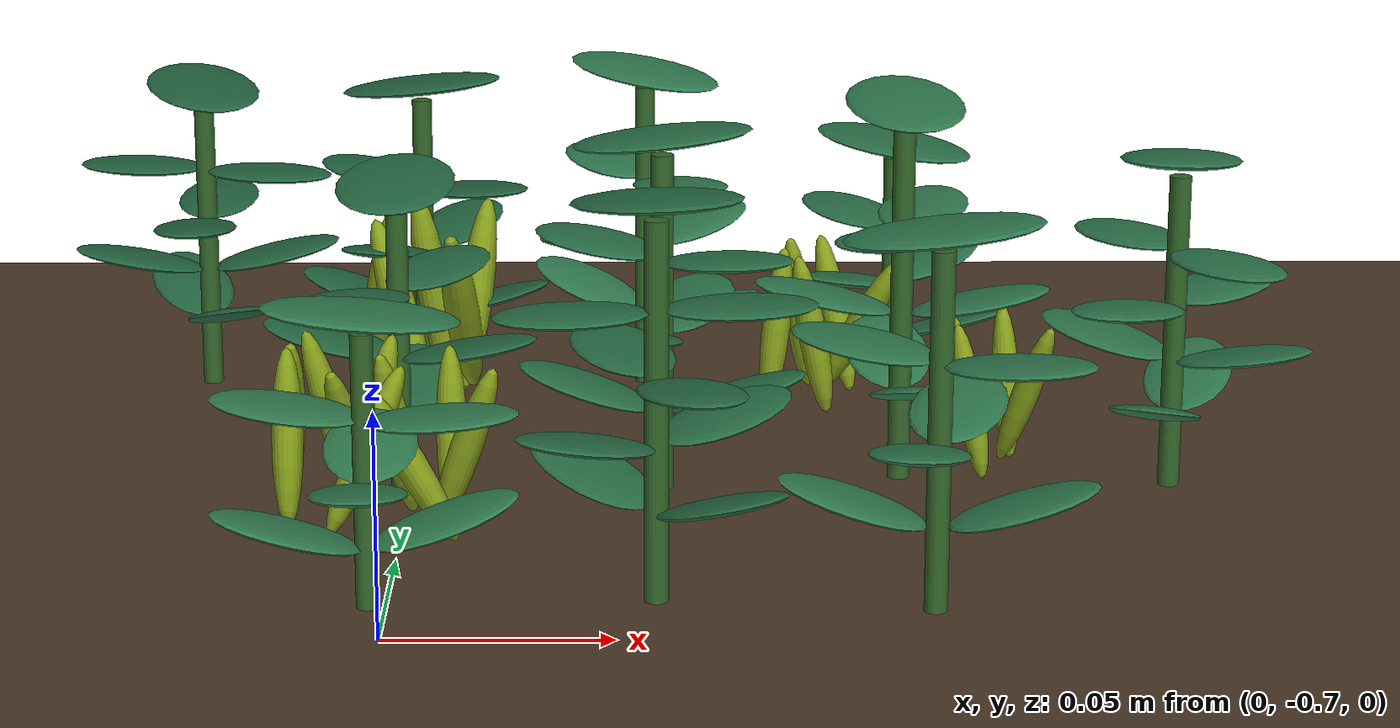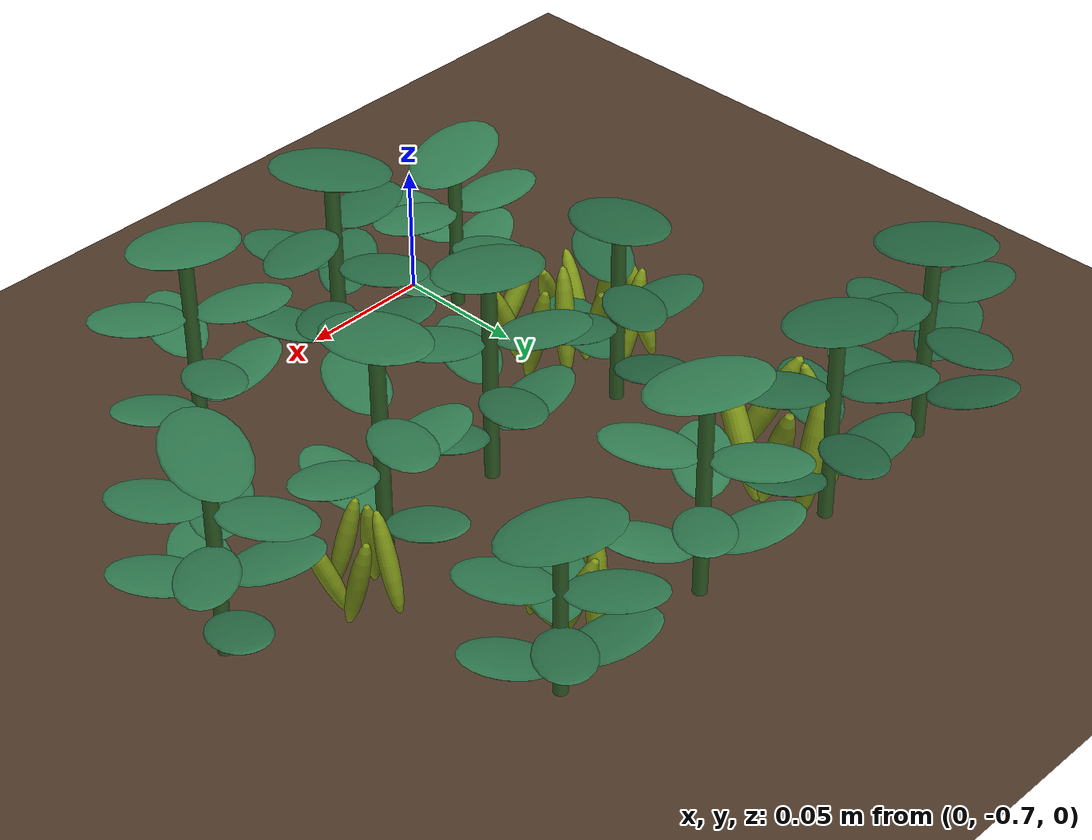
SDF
<sdf version="1.9">
 <world name="jim_field">
  <model name="ground_plane">
   <static>true</static>
   <link name="link">
    <collision name="collision">
     <geometry><plane><normal>0 0 1</normal><size>40 40</size></plane></geometry>
    </collision>
    <visual name="visual">
     <geometry><plane><normal>0 0 1</normal><size>40 40</size></plane></geometry>
     <material>
      <ambient>0.20 0.15 0.11 1</ambient>
      <diffuse>0.30 0.22 0.16 1</diffuse>
      <specular>0.01 0.01 0.01 1</specular>
     </material>
    </visual>
   </link>
  </model>
  <model name="field">
   <static>true</static>
   <pose>0.1837 -0.2516 0 0 0 0</pose>
   <model name="crop_5">
    <static>true</static>
    <pose>-0.1876 -0.4283 0 0 0 0</pose>
    <link name="link">
     <visual name="stem">
      <pose>0 0 0.0307 0 0 0</pose>
      <geometry><cylinder><radius>0.0025</radius><length>0.0613</length></cylinder></geometry>
      <material>
       <ambient>0.10 0.22 0.09 1</ambient>
       <diffuse>0.20 0.40 0.16 1</diffuse>
       <specular>0.05 0.06 0.05 1</specular>
      </material>
     </visual>
     <visual name="leaflet_0_0">
      <pose>-0.0168 -0.0039 0.0184 0 -0.300 3.3675</pose>
      <geometry><ellipsoid><radii>0.0170 0.0105 0.0016</radii></ellipsoid></geometry>
      <material>
       <ambient>0.099 0.249 0.149 1</ambient>
       <diffuse>0.188 0.477 0.308 1</diffuse>
       <specular>0.05 0.06 0.05 1</specular>
      </material>
     </visual>
     <visual name="leaflet_0_1">
      <pose>0.0168 0.0039 0.0184 0 -0.300 6.5091</pose>
      <geometry><ellipsoid><radii>0.0170 0.0105 0.0016</radii></ellipsoid></geometry>
      <material>
       <ambient>0.099 0.249 0.149 1</ambient>
       <diffuse>0.188 0.477 0.308 1</diffuse>
       <specular>0.05 0.06 0.05 1</specular>
      </material>
     </visual>
     <visual name="leaflet_1_0">
      <pose>0.0001 -0.0173 0.0311 0 -0.200 4.7175</pose>
      <geometry><ellipsoid><radii>0.0170 0.0105 0.0016</radii></ellipsoid></geometry>
      <material>
       <ambient>0.099 0.249 0.149 1</ambient>
       <diffuse>0.188 0.477 0.308 1</diffuse>
       <specular>0.05 0.06 0.05 1</specular>
      </material>
     </visual>
     <visual name="leaflet_1_1">
      <pose>-0.0001 0.0173 0.0311 0 -0.200 7.8591</pose>
      <geometry><ellipsoid><radii>0.0170 0.0105 0.0016</radii></ellipsoid></geometry>
      <material>
       <ambient>0.099 0.249 0.149 1</ambient>
       <diffuse>0.188 0.477 0.308 1</diffuse>
       <specular>0.05 0.06 0.05 1</specular>
      </material>
     </visual>
     <visual name="leaflet_2_0">
      <pose>0.0169 -0.0037 0.0437 0 -0.100 6.0675</pose>
      <geometry><ellipsoid><radii>0.0170 0.0105 0.0016</radii></ellipsoid></geometry>
      <material>
       <ambient>0.099 0.249 0.149 1</ambient>
       <diffuse>0.188 0.477 0.308 1</diffuse>
       <specular>0.05 0.06 0.05 1</specular>
      </material>
     </visual>
     <visual name="leaflet_2_1">
      <pose>-0.0169 0.0037 0.0437 0 -0.100 9.2091</pose>
      <geometry><ellipsoid><radii>0.0170 0.0105 0.0016</radii></ellipsoid></geometry>
      <material>
       <ambient>0.099 0.249 0.149 1</ambient>
       <diffuse>0.188 0.477 0.308 1</diffuse>
       <specular>0.05 0.06 0.05 1</specular>
      </material>
     </visual>
     <visual name="leaflet_terminal">
      <pose>0 0 0.0653 0 -0.12 3.3675</pose>
      <geometry><ellipsoid><radii>0.0215 0.0140 0.0018</radii></ellipsoid></geometry>
      <material>
       <ambient>0.099 0.249 0.149 1</ambient>
       <diffuse>0.188 0.477 0.308 1</diffuse>
       <specular>0.05 0.06 0.05 1</specular>
      </material>
     </visual>
    </link>
   </model>
   <model name="crop_6">
    <static>true</static>
    <pose>-0.1252 -0.4243 0 0 0 0</pose>
    <link name="link">
     <visual name="stem">
      <pose>0 0 0.0424 0 0 0</pose>
      <geometry><cylinder><radius>0.0027</radius><length>0.0849</length></cylinder></geometry>
      <material>
       <ambient>0.10 0.22 0.09 1</ambient>
       <diffuse>0.20 0.40 0.16 1</diffuse>
       <specular>0.05 0.06 0.05 1</specular>
      </material>
     </visual>
     <visual name="leaflet_0_0">
      <pose>0.0139 -0.0123 0.0255 0 -0.300 5.5606</pose>
      <geometry><ellipsoid><radii>0.0170 0.0105 0.0016</radii></ellipsoid></geometry>
      <material>
       <ambient>0.081 0.218 0.124 1</ambient>
       <diffuse>0.152 0.416 0.265 1</diffuse>
       <specular>0.05 0.06 0.05 1</specular>
      </material>
     </visual>
     <visual name="leaflet_0_1">
      <pose>-0.0139 0.0123 0.0255 0 -0.300 8.7022</pose>
      <geometry><ellipsoid><radii>0.0170 0.0105 0.0016</radii></ellipsoid></geometry>
      <material>
       <ambient>0.081 0.218 0.124 1</ambient>
       <diffuse>0.152 0.416 0.265 1</diffuse>
       <specular>0.05 0.06 0.05 1</specular>
      </material>
     </visual>
     <visual name="leaflet_1_0">
      <pose>0.0150 0.0109 0.0386 0 -0.200 6.9106</pose>
      <geometry><ellipsoid><radii>0.0170 0.0105 0.0016</radii></ellipsoid></geometry>
      <material>
       <ambient>0.081 0.218 0.124 1</ambient>
       <diffuse>0.152 0.416 0.265 1</diffuse>
       <specular>0.05 0.06 0.05 1</specular>
      </material>
     </visual>
     <visual name="leaflet_1_1">
      <pose>-0.0150 -0.0109 0.0386 0 -0.200 10.0522</pose>
      <geometry><ellipsoid><radii>0.0170 0.0105 0.0016</radii></ellipsoid></geometry>
      <material>
       <ambient>0.081 0.218 0.124 1</ambient>
       <diffuse>0.152 0.416 0.265 1</diffuse>
       <specular>0.05 0.06 0.05 1</specular>
      </material>
     </visual>
     <visual name="leaflet_2_0">
      <pose>-0.0073 0.0170 0.0518 0 -0.100 8.2606</pose>
      <geometry><ellipsoid><radii>0.0170 0.0105 0.0016</radii></ellipsoid></geometry>
      <material>
       <ambient>0.081 0.218 0.124 1</ambient>
       <diffuse>0.152 0.416 0.265 1</diffuse>
       <specular>0.05 0.06 0.05 1</specular>
      </material>
     </visual>
     <visual name="leaflet_2_1">
      <pose>0.0073 -0.0170 0.0518 0 -0.100 11.4022</pose>
      <geometry><ellipsoid><radii>0.0170 0.0105 0.0016</radii></ellipsoid></geometry>
      <material>
       <ambient>0.081 0.218 0.124 1</ambient>
       <diffuse>0.152 0.416 0.265 1</diffuse>
       <specular>0.05 0.06 0.05 1</specular>
      </material>
     </visual>
     <visual name="leaflet_3_0">
      <pose>-0.0182 -0.0034 0.0649 0 0.000 9.6106</pose>
      <geometry><ellipsoid><radii>0.0170 0.0105 0.0016</radii></ellipsoid></geometry>
      <material>
       <ambient>0.081 0.218 0.124 1</ambient>
       <diffuse>0.152 0.416 0.265 1</diffuse>
       <specular>0.05 0.06 0.05 1</specular>
      </material>
     </visual>
     <visual name="leaflet_3_1">
      <pose>0.0182 0.0034 0.0649 0 0.000 12.7522</pose>
      <geometry><ellipsoid><radii>0.0170 0.0105 0.0016</radii></ellipsoid></geometry>
      <material>
       <ambient>0.081 0.218 0.124 1</ambient>
       <diffuse>0.152 0.416 0.265 1</diffuse>
       <specular>0.05 0.06 0.05 1</specular>
      </material>
     </visual>
     <visual name="leaflet_terminal">
      <pose>0 0 0.0889 0 -0.12 5.5606</pose>
      <geometry><ellipsoid><radii>0.0215 0.0140 0.0018</radii></ellipsoid></geometry>
      <material>
       <ambient>0.081 0.218 0.124 1</ambient>
       <diffuse>0.152 0.416 0.265 1</diffuse>
       <specular>0.05 0.06 0.05 1</specular>
      </material>
     </visual>
    </link>
   </model>
   <model name="crop_7">
    <static>true</static>
    <pose>-0.0651 -0.4310 0 0 0 0</pose>
    <link name="link">
     <visual name="stem">
      <pose>0 0 0.0399 0 0 0</pose>
      <geometry><cylinder><radius>0.0026</radius><length>0.0798</length></cylinder></geometry>
      <material>
       <ambient>0.10 0.22 0.09 1</ambient>
       <diffuse>0.20 0.40 0.16 1</diffuse>
       <specular>0.05 0.06 0.05 1</specular>
      </material>
     </visual>
     <visual name="leaflet_0_0">
      <pose>0.0182 -0.0017 0.0240 0 -0.300 6.1872</pose>
      <geometry><ellipsoid><radii>0.0170 0.0105 0.0016</radii></ellipsoid></geometry>
      <material>
       <ambient>0.096 0.243 0.144 1</ambient>
       <diffuse>0.181 0.466 0.300 1</diffuse>
       <specular>0.05 0.06 0.05 1</specular>
      </material>
     </visual>
     <visual name="leaflet_0_1">
      <pose>-0.0182 0.0017 0.0240 0 -0.300 9.3288</pose>
      <geometry><ellipsoid><radii>0.0170 0.0105 0.0016</radii></ellipsoid></geometry>
      <material>
       <ambient>0.096 0.243 0.144 1</ambient>
       <diffuse>0.181 0.466 0.300 1</diffuse>
       <specular>0.05 0.06 0.05 1</specular>
      </material>
     </visual>
     <visual name="leaflet_1_0">
      <pose>0.0057 0.0173 0.0405 0 -0.200 7.5372</pose>
      <geometry><ellipsoid><radii>0.0170 0.0105 0.0016</radii></ellipsoid></geometry>
      <material>
       <ambient>0.096 0.243 0.144 1</ambient>
       <diffuse>0.181 0.466 0.300 1</diffuse>
       <specular>0.05 0.06 0.05 1</specular>
      </material>
     </visual>
     <visual name="leaflet_1_1">
      <pose>-0.0057 -0.0173 0.0405 0 -0.200 10.6788</pose>
      <geometry><ellipsoid><radii>0.0170 0.0105 0.0016</radii></ellipsoid></geometry>
      <material>
       <ambient>0.096 0.243 0.144 1</ambient>
       <diffuse>0.181 0.466 0.300 1</diffuse>
       <specular>0.05 0.06 0.05 1</specular>
      </material>
     </visual>
     <visual name="leaflet_2_0">
      <pose>-0.0157 0.0093 0.0570 0 -0.100 8.8872</pose>
      <geometry><ellipsoid><radii>0.0170 0.0105 0.0016</radii></ellipsoid></geometry>
      <material>
       <ambient>0.096 0.243 0.144 1</ambient>
       <diffuse>0.181 0.466 0.300 1</diffuse>
       <specular>0.05 0.06 0.05 1</specular>
      </material>
     </visual>
     <visual name="leaflet_2_1">
      <pose>0.0157 -0.0093 0.0570 0 -0.100 12.0288</pose>
      <geometry><ellipsoid><radii>0.0170 0.0105 0.0016</radii></ellipsoid></geometry>
      <material>
       <ambient>0.096 0.243 0.144 1</ambient>
       <diffuse>0.181 0.466 0.300 1</diffuse>
       <specular>0.05 0.06 0.05 1</specular>
      </material>
     </visual>
     <visual name="leaflet_terminal">
      <pose>0 0 0.0838 0 -0.12 6.1872</pose>
      <geometry><ellipsoid><radii>0.0215 0.0140 0.0018</radii></ellipsoid></geometry>
      <material>
       <ambient>0.096 0.243 0.144 1</ambient>
       <diffuse>0.181 0.466 0.300 1</diffuse>
       <specular>0.05 0.06 0.05 1</specular>
      </material>
     </visual>
    </link>
   </model>
   <model name="crop_22">
    <static>true</static>
    <pose>-0.1861 -0.3454 0 0 0 0</pose>
    <link name="link">
     <visual name="stem">
      <pose>0 0 0.0354 0 0 0</pose>
      <geometry><cylinder><radius>0.0026</radius><length>0.0709</length></cylinder></geometry>
      <material>
       <ambient>0.10 0.22 0.09 1</ambient>
       <diffuse>0.20 0.40 0.16 1</diffuse>
       <specular>0.05 0.06 0.05 1</specular>
      </material>
     </visual>
     <visual name="leaflet_0_0">
      <pose>0.0012 0.0177 0.0213 0 -0.300 1.5038</pose>
      <geometry><ellipsoid><radii>0.0170 0.0105 0.0016</radii></ellipsoid></geometry>
      <material>
       <ambient>0.077 0.212 0.120 1</ambient>
       <diffuse>0.144 0.404 0.257 1</diffuse>
       <specular>0.05 0.06 0.05 1</specular>
      </material>
     </visual>
     <visual name="leaflet_0_1">
      <pose>-0.0012 -0.0177 0.0213 0 -0.300 4.6454</pose>
      <geometry><ellipsoid><radii>0.0170 0.0105 0.0016</radii></ellipsoid></geometry>
      <material>
       <ambient>0.077 0.212 0.120 1</ambient>
       <diffuse>0.144 0.404 0.257 1</diffuse>
       <specular>0.05 0.06 0.05 1</specular>
      </material>
     </visual>
     <visual name="leaflet_1_0">
      <pose>-0.0170 0.0050 0.0359 0 -0.200 2.8538</pose>
      <geometry><ellipsoid><radii>0.0170 0.0105 0.0016</radii></ellipsoid></geometry>
      <material>
       <ambient>0.077 0.212 0.120 1</ambient>
       <diffuse>0.144 0.404 0.257 1</diffuse>
       <specular>0.05 0.06 0.05 1</specular>
      </material>
     </visual>
     <visual name="leaflet_1_1">
      <pose>0.0170 -0.0050 0.0359 0 -0.200 5.9954</pose>
      <geometry><ellipsoid><radii>0.0170 0.0105 0.0016</radii></ellipsoid></geometry>
      <material>
       <ambient>0.077 0.212 0.120 1</ambient>
       <diffuse>0.144 0.404 0.257 1</diffuse>
       <specular>0.05 0.06 0.05 1</specular>
      </material>
     </visual>
     <visual name="leaflet_2_0">
      <pose>-0.0087 -0.0155 0.0506 0 -0.100 4.2038</pose>
      <geometry><ellipsoid><radii>0.0170 0.0105 0.0016</radii></ellipsoid></geometry>
      <material>
       <ambient>0.077 0.212 0.120 1</ambient>
       <diffuse>0.144 0.404 0.257 1</diffuse>
       <specular>0.05 0.06 0.05 1</specular>
      </material>
     </visual>
     <visual name="leaflet_2_1">
      <pose>0.0087 0.0155 0.0506 0 -0.100 7.3454</pose>
      <geometry><ellipsoid><radii>0.0170 0.0105 0.0016</radii></ellipsoid></geometry>
      <material>
       <ambient>0.077 0.212 0.120 1</ambient>
       <diffuse>0.144 0.404 0.257 1</diffuse>
       <specular>0.05 0.06 0.05 1</specular>
      </material>
     </visual>
     <visual name="leaflet_terminal">
      <pose>0 0 0.0749 0 -0.12 1.5038</pose>
      <geometry><ellipsoid><radii>0.0215 0.0140 0.0018</radii></ellipsoid></geometry>
      <material>
       <ambient>0.077 0.212 0.120 1</ambient>
       <diffuse>0.144 0.404 0.257 1</diffuse>
       <specular>0.05 0.06 0.05 1</specular>
      </material>
     </visual>
    </link>
   </model>
   <model name="crop_23">
    <static>true</static>
    <pose>-0.1233 -0.3459 0 0 0 0</pose>
    <link name="link">
     <visual name="stem">
      <pose>0 0 0.0410 0 0 0</pose>
      <geometry><cylinder><radius>0.0027</radius><length>0.0820</length></cylinder></geometry>
      <material>
       <ambient>0.10 0.22 0.09 1</ambient>
       <diffuse>0.20 0.40 0.16 1</diffuse>
       <specular>0.05 0.06 0.05 1</specular>
      </material>
     </visual>
     <visual name="leaflet_0_0">
      <pose>0.0182 -0.0026 0.0246 0 -0.300 6.1417</pose>
      <geometry><ellipsoid><radii>0.0170 0.0105 0.0016</radii></ellipsoid></geometry>
      <material>
       <ambient>0.086 0.227 0.131 1</ambient>
       <diffuse>0.162 0.433 0.277 1</diffuse>
       <specular>0.05 0.06 0.05 1</specular>
      </material>
     </visual>
     <visual name="leaflet_0_1">
      <pose>-0.0182 0.0026 0.0246 0 -0.300 9.2833</pose>
      <geometry><ellipsoid><radii>0.0170 0.0105 0.0016</radii></ellipsoid></geometry>
      <material>
       <ambient>0.086 0.227 0.131 1</ambient>
       <diffuse>0.162 0.433 0.277 1</diffuse>
       <specular>0.05 0.06 0.05 1</specular>
      </material>
     </visual>
     <visual name="leaflet_1_0">
      <pose>0.0065 0.0172 0.0415 0 -0.200 7.4917</pose>
      <geometry><ellipsoid><radii>0.0170 0.0105 0.0016</radii></ellipsoid></geometry>
      <material>
       <ambient>0.086 0.227 0.131 1</ambient>
       <diffuse>0.162 0.433 0.277 1</diffuse>
       <specular>0.05 0.06 0.05 1</specular>
      </material>
     </visual>
     <visual name="leaflet_1_1">
      <pose>-0.0065 -0.0172 0.0415 0 -0.200 10.6333</pose>
      <geometry><ellipsoid><radii>0.0170 0.0105 0.0016</radii></ellipsoid></geometry>
      <material>
       <ambient>0.086 0.227 0.131 1</ambient>
       <diffuse>0.162 0.433 0.277 1</diffuse>
       <specular>0.05 0.06 0.05 1</specular>
      </material>
     </visual>
     <visual name="leaflet_2_0">
      <pose>-0.0153 0.0101 0.0585 0 -0.100 8.8417</pose>
      <geometry><ellipsoid><radii>0.0170 0.0105 0.0016</radii></ellipsoid></geometry>
      <material>
       <ambient>0.086 0.227 0.131 1</ambient>
       <diffuse>0.162 0.433 0.277 1</diffuse>
       <specular>0.05 0.06 0.05 1</specular>
      </material>
     </visual>
     <visual name="leaflet_2_1">
      <pose>0.0153 -0.0101 0.0585 0 -0.100 11.9833</pose>
      <geometry><ellipsoid><radii>0.0170 0.0105 0.0016</radii></ellipsoid></geometry>
      <material>
       <ambient>0.086 0.227 0.131 1</ambient>
       <diffuse>0.162 0.433 0.277 1</diffuse>
       <specular>0.05 0.06 0.05 1</specular>
      </material>
     </visual>
     <visual name="leaflet_terminal">
      <pose>0 0 0.0860 0 -0.12 6.1417</pose>
      <geometry><ellipsoid><radii>0.0215 0.0140 0.0018</radii></ellipsoid></geometry>
      <material>
       <ambient>0.086 0.227 0.131 1</ambient>
       <diffuse>0.162 0.433 0.277 1</diffuse>
       <specular>0.05 0.06 0.05 1</specular>
      </material>
     </visual>
    </link>
   </model>
   <model name="crop_24">
    <static>true</static>
    <pose>-0.0657 -0.3378 0 0 0 0</pose>
    <link name="link">
     <visual name="stem">
      <pose>0 0 0.0442 0 0 0</pose>
      <geometry><cylinder><radius>0.0027</radius><length>0.0884</length></cylinder></geometry>
      <material>
       <ambient>0.10 0.22 0.09 1</ambient>
       <diffuse>0.20 0.40 0.16 1</diffuse>
       <specular>0.05 0.06 0.05 1</specular>
      </material>
     </visual>
     <visual name="leaflet_0_0">
      <pose>-0.0018 0.0186 0.0265 0 -0.300 1.6646</pose>
      <geometry><ellipsoid><radii>0.0170 0.0105 0.0016</radii></ellipsoid></geometry>
      <material>
       <ambient>0.096 0.244 0.145 1</ambient>
       <diffuse>0.182 0.467 0.301 1</diffuse>
       <specular>0.05 0.06 0.05 1</specular>
      </material>
     </visual>
     <visual name="leaflet_0_1">
      <pose>0.0018 -0.0186 0.0265 0 -0.300 4.8061</pose>
      <geometry><ellipsoid><radii>0.0170 0.0105 0.0016</radii></ellipsoid></geometry>
      <material>
       <ambient>0.096 0.244 0.145 1</ambient>
       <diffuse>0.182 0.467 0.301 1</diffuse>
       <specular>0.05 0.06 0.05 1</specular>
      </material>
     </visual>
     <visual name="leaflet_1_0">
      <pose>-0.0186 0.0024 0.0448 0 -0.200 3.0146</pose>
      <geometry><ellipsoid><radii>0.0170 0.0105 0.0016</radii></ellipsoid></geometry>
      <material>
       <ambient>0.096 0.244 0.145 1</ambient>
       <diffuse>0.182 0.467 0.301 1</diffuse>
       <specular>0.05 0.06 0.05 1</specular>
      </material>
     </visual>
     <visual name="leaflet_1_1">
      <pose>0.0186 -0.0024 0.0448 0 -0.200 6.1561</pose>
      <geometry><ellipsoid><radii>0.0170 0.0105 0.0016</radii></ellipsoid></geometry>
      <material>
       <ambient>0.096 0.244 0.145 1</ambient>
       <diffuse>0.182 0.467 0.301 1</diffuse>
       <specular>0.05 0.06 0.05 1</specular>
      </material>
     </visual>
     <visual name="leaflet_2_0">
      <pose>-0.0064 -0.0176 0.0631 0 -0.100 4.3646</pose>
      <geometry><ellipsoid><radii>0.0170 0.0105 0.0016</radii></ellipsoid></geometry>
      <material>
       <ambient>0.096 0.244 0.145 1</ambient>
       <diffuse>0.182 0.467 0.301 1</diffuse>
       <specular>0.05 0.06 0.05 1</specular>
      </material>
     </visual>
     <visual name="leaflet_2_1">
      <pose>0.0064 0.0176 0.0631 0 -0.100 7.5061</pose>
      <geometry><ellipsoid><radii>0.0170 0.0105 0.0016</radii></ellipsoid></geometry>
      <material>
       <ambient>0.096 0.244 0.145 1</ambient>
       <diffuse>0.182 0.467 0.301 1</diffuse>
       <specular>0.05 0.06 0.05 1</specular>
      </material>
     </visual>
     <visual name="leaflet_terminal">
      <pose>0 0 0.0924 0 -0.12 1.6646</pose>
      <geometry><ellipsoid><radii>0.0215 0.0140 0.0018</radii></ellipsoid></geometry>
      <material>
       <ambient>0.096 0.244 0.145 1</ambient>
       <diffuse>0.182 0.467 0.301 1</diffuse>
       <specular>0.05 0.06 0.05 1</specular>
      </material>
     </visual>
    </link>
   </model>
   <model name="crop_25">
    <static>true</static>
    <pose>-0.0008 -0.3440 0 0 0 0</pose>
    <link name="link">
     <visual name="stem">
      <pose>0 0 0.0381 0 0 0</pose>
      <geometry><cylinder><radius>0.0026</radius><length>0.0762</length></cylinder></geometry>
      <material>
       <ambient>0.10 0.22 0.09 1</ambient>
       <diffuse>0.20 0.40 0.16 1</diffuse>
       <specular>0.05 0.06 0.05 1</specular>
      </material>
     </visual>
     <visual name="leaflet_0_0">
      <pose>-0.0067 -0.0168 0.0229 0 -0.300 4.3324</pose>
      <geometry><ellipsoid><radii>0.0170 0.0105 0.0016</radii></ellipsoid></geometry>
      <material>
       <ambient>0.091 0.236 0.139 1</ambient>
       <diffuse>0.173 0.451 0.290 1</diffuse>
       <specular>0.05 0.06 0.05 1</specular>
      </material>
     </visual>
     <visual name="leaflet_0_1">
      <pose>0.0067 0.0168 0.0229 0 -0.300 7.4740</pose>
      <geometry><ellipsoid><radii>0.0170 0.0105 0.0016</radii></ellipsoid></geometry>
      <material>
       <ambient>0.091 0.236 0.139 1</ambient>
       <diffuse>0.173 0.451 0.290 1</diffuse>
       <specular>0.05 0.06 0.05 1</specular>
      </material>
     </visual>
     <visual name="leaflet_1_0">
      <pose>0.0149 -0.0102 0.0347 0 -0.200 5.6824</pose>
      <geometry><ellipsoid><radii>0.0170 0.0105 0.0016</radii></ellipsoid></geometry>
      <material>
       <ambient>0.091 0.236 0.139 1</ambient>
       <diffuse>0.173 0.451 0.290 1</diffuse>
       <specular>0.05 0.06 0.05 1</specular>
      </material>
     </visual>
     <visual name="leaflet_1_1">
      <pose>-0.0149 0.0102 0.0347 0 -0.200 8.8240</pose>
      <geometry><ellipsoid><radii>0.0170 0.0105 0.0016</radii></ellipsoid></geometry>
      <material>
       <ambient>0.091 0.236 0.139 1</ambient>
       <diffuse>0.173 0.451 0.290 1</diffuse>
       <specular>0.05 0.06 0.05 1</specular>
      </material>
     </visual>
     <visual name="leaflet_2_0">
      <pose>0.0132 0.0123 0.0465 0 -0.100 7.0324</pose>
      <geometry><ellipsoid><radii>0.0170 0.0105 0.0016</radii></ellipsoid></geometry>
      <material>
       <ambient>0.091 0.236 0.139 1</ambient>
       <diffuse>0.173 0.451 0.290 1</diffuse>
       <specular>0.05 0.06 0.05 1</specular>
      </material>
     </visual>
     <visual name="leaflet_2_1">
      <pose>-0.0132 -0.0123 0.0465 0 -0.100 10.1740</pose>
      <geometry><ellipsoid><radii>0.0170 0.0105 0.0016</radii></ellipsoid></geometry>
      <material>
       <ambient>0.091 0.236 0.139 1</ambient>
       <diffuse>0.173 0.451 0.290 1</diffuse>
       <specular>0.05 0.06 0.05 1</specular>
      </material>
     </visual>
     <visual name="leaflet_3_0">
      <pose>-0.0091 0.0156 0.0583 0 0.000 8.3824</pose>
      <geometry><ellipsoid><radii>0.0170 0.0105 0.0016</radii></ellipsoid></geometry>
      <material>
       <ambient>0.091 0.236 0.139 1</ambient>
       <diffuse>0.173 0.451 0.290 1</diffuse>
       <specular>0.05 0.06 0.05 1</specular>
      </material>
     </visual>
     <visual name="leaflet_3_1">
      <pose>0.0091 -0.0156 0.0583 0 0.000 11.5240</pose>
      <geometry><ellipsoid><radii>0.0170 0.0105 0.0016</radii></ellipsoid></geometry>
      <material>
       <ambient>0.091 0.236 0.139 1</ambient>
       <diffuse>0.173 0.451 0.290 1</diffuse>
       <specular>0.05 0.06 0.05 1</specular>
      </material>
     </visual>
     <visual name="leaflet_terminal">
      <pose>0 0 0.0802 0 -0.12 4.3324</pose>
      <geometry><ellipsoid><radii>0.0215 0.0140 0.0018</radii></ellipsoid></geometry>
      <material>
       <ambient>0.091 0.236 0.139 1</ambient>
       <diffuse>0.173 0.451 0.290 1</diffuse>
       <specular>0.05 0.06 0.05 1</specular>
      </material>
     </visual>
    </link>
   </model>
   <model name="crop_38">
    <static>true</static>
    <pose>-0.2433 -0.2539 0 0 0 0</pose>
    <link name="link">
     <visual name="stem">
      <pose>0 0 0.0381 0 0 0</pose>
      <geometry><cylinder><radius>0.0026</radius><length>0.0763</length></cylinder></geometry>
      <material>
       <ambient>0.10 0.22 0.09 1</ambient>
       <diffuse>0.20 0.40 0.16 1</diffuse>
       <specular>0.05 0.06 0.05 1</specular>
      </material>
     </visual>
     <visual name="leaflet_0_0">
      <pose>-0.0070 0.0167 0.0229 0 -0.300 1.9694</pose>
      <geometry><ellipsoid><radii>0.0170 0.0105 0.0016</radii></ellipsoid></geometry>
      <material>
       <ambient>0.072 0.203 0.112 1</ambient>
       <diffuse>0.133 0.385 0.244 1</diffuse>
       <specular>0.05 0.06 0.05 1</specular>
      </material>
     </visual>
     <visual name="leaflet_0_1">
      <pose>0.0070 -0.0167 0.0229 0 -0.300 5.1110</pose>
      <geometry><ellipsoid><radii>0.0170 0.0105 0.0016</radii></ellipsoid></geometry>
      <material>
       <ambient>0.072 0.203 0.112 1</ambient>
       <diffuse>0.133 0.385 0.244 1</diffuse>
       <specular>0.05 0.06 0.05 1</specular>
      </material>
     </visual>
     <visual name="leaflet_1_0">
      <pose>-0.0178 -0.0032 0.0347 0 -0.200 3.3194</pose>
      <geometry><ellipsoid><radii>0.0170 0.0105 0.0016</radii></ellipsoid></geometry>
      <material>
       <ambient>0.072 0.203 0.112 1</ambient>
       <diffuse>0.133 0.385 0.244 1</diffuse>
       <specular>0.05 0.06 0.05 1</specular>
      </material>
     </visual>
     <visual name="leaflet_1_1">
      <pose>0.0178 0.0032 0.0347 0 -0.200 6.4610</pose>
      <geometry><ellipsoid><radii>0.0170 0.0105 0.0016</radii></ellipsoid></geometry>
      <material>
       <ambient>0.072 0.203 0.112 1</ambient>
       <diffuse>0.133 0.385 0.244 1</diffuse>
       <specular>0.05 0.06 0.05 1</specular>
      </material>
     </visual>
     <visual name="leaflet_2_0">
      <pose>-0.0008 -0.0181 0.0465 0 -0.100 4.6694</pose>
      <geometry><ellipsoid><radii>0.0170 0.0105 0.0016</radii></ellipsoid></geometry>
      <material>
       <ambient>0.072 0.203 0.112 1</ambient>
       <diffuse>0.133 0.385 0.244 1</diffuse>
       <specular>0.05 0.06 0.05 1</specular>
      </material>
     </visual>
     <visual name="leaflet_2_1">
      <pose>0.0008 0.0181 0.0465 0 -0.100 7.8110</pose>
      <geometry><ellipsoid><radii>0.0170 0.0105 0.0016</radii></ellipsoid></geometry>
      <material>
       <ambient>0.072 0.203 0.112 1</ambient>
       <diffuse>0.133 0.385 0.244 1</diffuse>
       <specular>0.05 0.06 0.05 1</specular>
      </material>
     </visual>
     <visual name="leaflet_3_0">
      <pose>0.0174 -0.0047 0.0583 0 0.000 6.0194</pose>
      <geometry><ellipsoid><radii>0.0170 0.0105 0.0016</radii></ellipsoid></geometry>
      <material>
       <ambient>0.072 0.203 0.112 1</ambient>
       <diffuse>0.133 0.385 0.244 1</diffuse>
       <specular>0.05 0.06 0.05 1</specular>
      </material>
     </visual>
     <visual name="leaflet_3_1">
      <pose>-0.0174 0.0047 0.0583 0 0.000 9.1610</pose>
      <geometry><ellipsoid><radii>0.0170 0.0105 0.0016</radii></ellipsoid></geometry>
      <material>
       <ambient>0.072 0.203 0.112 1</ambient>
       <diffuse>0.133 0.385 0.244 1</diffuse>
       <specular>0.05 0.06 0.05 1</specular>
      </material>
     </visual>
     <visual name="leaflet_terminal">
      <pose>0 0 0.0803 0 -0.12 1.9694</pose>
      <geometry><ellipsoid><radii>0.0215 0.0140 0.0018</radii></ellipsoid></geometry>
      <material>
       <ambient>0.072 0.203 0.112 1</ambient>
       <diffuse>0.133 0.385 0.244 1</diffuse>
       <specular>0.05 0.06 0.05 1</specular>
      </material>
     </visual>
    </link>
   </model>
   <model name="crop_39">
    <static>true</static>
    <pose>-0.1862 -0.2491 0 0 0 0</pose>
    <link name="link">
     <visual name="stem">
      <pose>0 0 0.0380 0 0 0</pose>
      <geometry><cylinder><radius>0.0026</radius><length>0.0759</length></cylinder></geometry>
      <material>
       <ambient>0.10 0.22 0.09 1</ambient>
       <diffuse>0.20 0.40 0.16 1</diffuse>
       <specular>0.05 0.06 0.05 1</specular>
      </material>
     </visual>
     <visual name="leaflet_0_0">
      <pose>0.0175 -0.0045 0.0228 0 -0.300 6.0337</pose>
      <geometry><ellipsoid><radii>0.0170 0.0105 0.0016</radii></ellipsoid></geometry>
      <material>
       <ambient>0.072 0.204 0.113 1</ambient>
       <diffuse>0.135 0.388 0.246 1</diffuse>
       <specular>0.05 0.06 0.05 1</specular>
      </material>
     </visual>
     <visual name="leaflet_0_1">
      <pose>-0.0175 0.0045 0.0228 0 -0.300 9.1753</pose>
      <geometry><ellipsoid><radii>0.0170 0.0105 0.0016</radii></ellipsoid></geometry>
      <material>
       <ambient>0.072 0.204 0.113 1</ambient>
       <diffuse>0.135 0.388 0.246 1</diffuse>
       <specular>0.05 0.06 0.05 1</specular>
      </material>
     </visual>
     <visual name="leaflet_1_0">
      <pose>0.0082 0.0161 0.0385 0 -0.200 7.3837</pose>
      <geometry><ellipsoid><radii>0.0170 0.0105 0.0016</radii></ellipsoid></geometry>
      <material>
       <ambient>0.072 0.204 0.113 1</ambient>
       <diffuse>0.135 0.388 0.246 1</diffuse>
       <specular>0.05 0.06 0.05 1</specular>
      </material>
     </visual>
     <visual name="leaflet_1_1">
      <pose>-0.0082 -0.0161 0.0385 0 -0.200 10.5253</pose>
      <geometry><ellipsoid><radii>0.0170 0.0105 0.0016</radii></ellipsoid></geometry>
      <material>
       <ambient>0.072 0.204 0.113 1</ambient>
       <diffuse>0.135 0.388 0.246 1</diffuse>
       <specular>0.05 0.06 0.05 1</specular>
      </material>
     </visual>
     <visual name="leaflet_2_0">
      <pose>-0.0139 0.0115 0.0542 0 -0.100 8.7337</pose>
      <geometry><ellipsoid><radii>0.0170 0.0105 0.0016</radii></ellipsoid></geometry>
      <material>
       <ambient>0.072 0.204 0.113 1</ambient>
       <diffuse>0.135 0.388 0.246 1</diffuse>
       <specular>0.05 0.06 0.05 1</specular>
      </material>
     </visual>
     <visual name="leaflet_2_1">
      <pose>0.0139 -0.0115 0.0542 0 -0.100 11.8753</pose>
      <geometry><ellipsoid><radii>0.0170 0.0105 0.0016</radii></ellipsoid></geometry>
      <material>
       <ambient>0.072 0.204 0.113 1</ambient>
       <diffuse>0.135 0.388 0.246 1</diffuse>
       <specular>0.05 0.06 0.05 1</specular>
      </material>
     </visual>
     <visual name="leaflet_terminal">
      <pose>0 0 0.0799 0 -0.12 6.0337</pose>
      <geometry><ellipsoid><radii>0.0215 0.0140 0.0018</radii></ellipsoid></geometry>
      <material>
       <ambient>0.072 0.204 0.113 1</ambient>
       <diffuse>0.135 0.388 0.246 1</diffuse>
       <specular>0.05 0.06 0.05 1</specular>
      </material>
     </visual>
    </link>
   </model>
   <model name="crop_40">
    <static>true</static>
    <pose>-0.1271 -0.2537 0 0 0 0</pose>
    <link name="link">
     <visual name="stem">
      <pose>0 0 0.0401 0 0 0</pose>
      <geometry><cylinder><radius>0.0026</radius><length>0.0803</length></cylinder></geometry>
      <material>
       <ambient>0.10 0.22 0.09 1</ambient>
       <diffuse>0.20 0.40 0.16 1</diffuse>
       <specular>0.05 0.06 0.05 1</specular>
      </material>
     </visual>
     <visual name="leaflet_0_0">
      <pose>-0.0150 0.0104 0.0241 0 -0.300 2.5357</pose>
      <geometry><ellipsoid><radii>0.0170 0.0105 0.0016</radii></ellipsoid></geometry>
      <material>
       <ambient>0.098 0.247 0.148 1</ambient>
       <diffuse>0.186 0.474 0.306 1</diffuse>
       <specular>0.05 0.06 0.05 1</specular>
      </material>
     </visual>
     <visual name="leaflet_0_1">
      <pose>0.0150 -0.0104 0.0241 0 -0.300 5.6773</pose>
      <geometry><ellipsoid><radii>0.0170 0.0105 0.0016</radii></ellipsoid></geometry>
      <material>
       <ambient>0.098 0.247 0.148 1</ambient>
       <diffuse>0.186 0.474 0.306 1</diffuse>
       <specular>0.05 0.06 0.05 1</specular>
      </material>
     </visual>
     <visual name="leaflet_1_0">
      <pose>-0.0134 -0.0124 0.0407 0 -0.200 3.8857</pose>
      <geometry><ellipsoid><radii>0.0170 0.0105 0.0016</radii></ellipsoid></geometry>
      <material>
       <ambient>0.098 0.247 0.148 1</ambient>
       <diffuse>0.186 0.474 0.306 1</diffuse>
       <specular>0.05 0.06 0.05 1</specular>
      </material>
     </visual>
     <visual name="leaflet_1_1">
      <pose>0.0134 0.0124 0.0407 0 -0.200 7.0273</pose>
      <geometry><ellipsoid><radii>0.0170 0.0105 0.0016</radii></ellipsoid></geometry>
      <material>
       <ambient>0.098 0.247 0.148 1</ambient>
       <diffuse>0.186 0.474 0.306 1</diffuse>
       <specular>0.05 0.06 0.05 1</specular>
      </material>
     </visual>
     <visual name="leaflet_2_0">
      <pose>0.0091 -0.0158 0.0572 0 -0.100 5.2357</pose>
      <geometry><ellipsoid><radii>0.0170 0.0105 0.0016</radii></ellipsoid></geometry>
      <material>
       <ambient>0.098 0.247 0.148 1</ambient>
       <diffuse>0.186 0.474 0.306 1</diffuse>
       <specular>0.05 0.06 0.05 1</specular>
      </material>
     </visual>
     <visual name="leaflet_2_1">
      <pose>-0.0091 0.0158 0.0572 0 -0.100 8.3773</pose>
      <geometry><ellipsoid><radii>0.0170 0.0105 0.0016</radii></ellipsoid></geometry>
      <material>
       <ambient>0.098 0.247 0.148 1</ambient>
       <diffuse>0.186 0.474 0.306 1</diffuse>
       <specular>0.05 0.06 0.05 1</specular>
      </material>
     </visual>
     <visual name="leaflet_terminal">
      <pose>0 0 0.0843 0 -0.12 2.5357</pose>
      <geometry><ellipsoid><radii>0.0215 0.0140 0.0018</radii></ellipsoid></geometry>
      <material>
       <ambient>0.098 0.247 0.148 1</ambient>
       <diffuse>0.186 0.474 0.306 1</diffuse>
       <specular>0.05 0.06 0.05 1</specular>
      </material>
     </visual>
    </link>
   </model>
   <model name="crop_41">
    <static>true</static>
    <pose>-0.0613 -0.2539 0 0 0 0</pose>
    <link name="link">
     <visual name="stem">
      <pose>0 0 0.0306 0 0 0</pose>
      <geometry><cylinder><radius>0.0025</radius><length>0.0612</length></cylinder></geometry>
      <material>
       <ambient>0.10 0.22 0.09 1</ambient>
       <diffuse>0.20 0.40 0.16 1</diffuse>
       <specular>0.05 0.06 0.05 1</specular>
      </material>
     </visual>
     <visual name="leaflet_0_0">
      <pose>-0.0151 0.0084 0.0184 0 -0.300 2.6327</pose>
      <geometry><ellipsoid><radii>0.0170 0.0105 0.0016</radii></ellipsoid></geometry>
      <material>
       <ambient>0.088 0.229 0.133 1</ambient>
       <diffuse>0.165 0.438 0.281 1</diffuse>
       <specular>0.05 0.06 0.05 1</specular>
      </material>
     </visual>
     <visual name="leaflet_0_1">
      <pose>0.0151 -0.0084 0.0184 0 -0.300 5.7743</pose>
      <geometry><ellipsoid><radii>0.0170 0.0105 0.0016</radii></ellipsoid></geometry>
      <material>
       <ambient>0.088 0.229 0.133 1</ambient>
       <diffuse>0.165 0.438 0.281 1</diffuse>
       <specular>0.05 0.06 0.05 1</specular>
      </material>
     </visual>
     <visual name="leaflet_1_0">
      <pose>-0.0115 -0.0129 0.0310 0 -0.200 3.9827</pose>
      <geometry><ellipsoid><radii>0.0170 0.0105 0.0016</radii></ellipsoid></geometry>
      <material>
       <ambient>0.088 0.229 0.133 1</ambient>
       <diffuse>0.165 0.438 0.281 1</diffuse>
       <specular>0.05 0.06 0.05 1</specular>
      </material>
     </visual>
     <visual name="leaflet_1_1">
      <pose>0.0115 0.0129 0.0310 0 -0.200 7.1243</pose>
      <geometry><ellipsoid><radii>0.0170 0.0105 0.0016</radii></ellipsoid></geometry>
      <material>
       <ambient>0.088 0.229 0.133 1</ambient>
       <diffuse>0.165 0.438 0.281 1</diffuse>
       <specular>0.05 0.06 0.05 1</specular>
      </material>
     </visual>
     <visual name="leaflet_2_0">
      <pose>0.0100 -0.0140 0.0437 0 -0.100 5.3327</pose>
      <geometry><ellipsoid><radii>0.0170 0.0105 0.0016</radii></ellipsoid></geometry>
      <material>
       <ambient>0.088 0.229 0.133 1</ambient>
       <diffuse>0.165 0.438 0.281 1</diffuse>
       <specular>0.05 0.06 0.05 1</specular>
      </material>
     </visual>
     <visual name="leaflet_2_1">
      <pose>-0.0100 0.0140 0.0437 0 -0.100 8.4743</pose>
      <geometry><ellipsoid><radii>0.0170 0.0105 0.0016</radii></ellipsoid></geometry>
      <material>
       <ambient>0.088 0.229 0.133 1</ambient>
       <diffuse>0.165 0.438 0.281 1</diffuse>
       <specular>0.05 0.06 0.05 1</specular>
      </material>
     </visual>
     <visual name="leaflet_terminal">
      <pose>0 0 0.0652 0 -0.12 2.6327</pose>
      <geometry><ellipsoid><radii>0.0215 0.0140 0.0018</radii></ellipsoid></geometry>
      <material>
       <ambient>0.088 0.229 0.133 1</ambient>
       <diffuse>0.165 0.438 0.281 1</diffuse>
       <specular>0.05 0.06 0.05 1</specular>
      </material>
     </visual>
    </link>
   </model>
   <model name="weed_far_2">
    <static>true</static>
    <pose>-0.1800 -0.3805 0 0 0 0</pose>
    <link name="link">
     <visual name="blade_0">
      <pose>0.0078 0.0086 0.0211 -0.1542 0.1402 0.8327</pose>
      <geometry><ellipsoid><radii>0.0037 0.0037 0.0211</radii></ellipsoid></geometry>
      <material>
       <ambient>0.24 0.30 0.04 1</ambient>
       <diffuse>0.52 0.62 0.10 1</diffuse>
       <specular>0.05 0.06 0.05 1</specular>
      </material>
     </visual>
     <visual name="blade_1">
      <pose>-0.0051 0.0104 0.0211 -0.2336 -0.1151 2.0287</pose>
      <geometry><ellipsoid><radii>0.0037 0.0037 0.0211</radii></ellipsoid></geometry>
      <material>
       <ambient>0.24 0.30 0.04 1</ambient>
       <diffuse>0.52 0.62 0.10 1</diffuse>
       <specular>0.05 0.06 0.05 1</specular>
      </material>
     </visual>
     <visual name="blade_2">
      <pose>-0.0113 -0.0026 0.0211 0.1025 -0.4516 3.3648</pose>
      <geometry><ellipsoid><radii>0.0037 0.0037 0.0211</radii></ellipsoid></geometry>
      <material>
       <ambient>0.24 0.30 0.04 1</ambient>
       <diffuse>0.52 0.62 0.10 1</diffuse>
       <specular>0.05 0.06 0.05 1</specular>
      </material>
     </visual>
     <visual name="blade_3">
      <pose>-0.0006 -0.0116 0.0211 0.5269 -0.0285 4.6583</pose>
      <geometry><ellipsoid><radii>0.0037 0.0037 0.0211</radii></ellipsoid></geometry>
      <material>
       <ambient>0.24 0.30 0.04 1</ambient>
       <diffuse>0.52 0.62 0.10 1</diffuse>
       <specular>0.05 0.06 0.05 1</specular>
      </material>
     </visual>
     <visual name="blade_4">
      <pose>0.0115 -0.0018 0.0211 0.0529 0.3443 6.1308</pose>
      <geometry><ellipsoid><radii>0.0037 0.0037 0.0211</radii></ellipsoid></geometry>
      <material>
       <ambient>0.24 0.30 0.04 1</ambient>
       <diffuse>0.52 0.62 0.10 1</diffuse>
       <specular>0.05 0.06 0.05 1</specular>
      </material>
     </visual>
    </link>
   </model>
   <model name="weed_far_10">
    <static>true</static>
    <pose>-0.0445 -0.3289 0 0 0 0</pose>
    <link name="link">
     <visual name="blade_0">
      <pose>-0.0071 0.0077 0.0191 -0.2075 -0.1919 2.3172</pose>
      <geometry><ellipsoid><radii>0.0033 0.0033 0.0191</radii></ellipsoid></geometry>
      <material>
       <ambient>0.24 0.30 0.04 1</ambient>
       <diffuse>0.52 0.62 0.10 1</diffuse>
       <specular>0.05 0.06 0.05 1</specular>
      </material>
     </visual>
     <visual name="blade_1">
      <pose>-0.0099 -0.0034 0.0191 0.0623 -0.1820 3.4715</pose>
      <geometry><ellipsoid><radii>0.0033 0.0033 0.0191</radii></ellipsoid></geometry>
      <material>
       <ambient>0.24 0.30 0.04 1</ambient>
       <diffuse>0.52 0.62 0.10 1</diffuse>
       <specular>0.05 0.06 0.05 1</specular>
      </material>
     </visual>
     <visual name="blade_2">
      <pose>-0.0041 -0.0097 0.0191 0.2197 -0.0936 4.3096</pose>
      <geometry><ellipsoid><radii>0.0033 0.0033 0.0191</radii></ellipsoid></geometry>
      <material>
       <ambient>0.24 0.30 0.04 1</ambient>
       <diffuse>0.52 0.62 0.10 1</diffuse>
       <specular>0.05 0.06 0.05 1</specular>
      </material>
     </visual>
     <visual name="blade_3">
      <pose>0.0100 -0.0034 0.0191 0.1202 0.3533 5.9551</pose>
      <geometry><ellipsoid><radii>0.0033 0.0033 0.0191</radii></ellipsoid></geometry>
      <material>
       <ambient>0.24 0.30 0.04 1</ambient>
       <diffuse>0.52 0.62 0.10 1</diffuse>
       <specular>0.05 0.06 0.05 1</specular>
      </material>
     </visual>
     <visual name="blade_4">
      <pose>0.0066 0.0082 0.0191 -0.1857 0.1495 7.1763</pose>
      <geometry><ellipsoid><radii>0.0033 0.0033 0.0191</radii></ellipsoid></geometry>
      <material>
       <ambient>0.24 0.30 0.04 1</ambient>
       <diffuse>0.52 0.62 0.10 1</diffuse>
       <specular>0.05 0.06 0.05 1</specular>
      </material>
     </visual>
    </link>
   </model>
   <model name="weed_far_13">
    <static>true</static>
    <pose>-0.0824 -0.2731 0 0 0 0</pose>
    <link name="link">
     <visual name="blade_0">
      <pose>-0.0038 0.0110 0.0211 -0.1584 -0.0555 1.9080</pose>
      <geometry><ellipsoid><radii>0.0037 0.0037 0.0211</radii></ellipsoid></geometry>
      <material>
       <ambient>0.24 0.30 0.04 1</ambient>
       <diffuse>0.52 0.62 0.10 1</diffuse>
       <specular>0.05 0.06 0.05 1</specular>
      </material>
     </visual>
     <visual name="blade_1">
      <pose>-0.0107 -0.0046 0.0211 0.0633 -0.1459 3.5508</pose>
      <geometry><ellipsoid><radii>0.0037 0.0037 0.0211</radii></ellipsoid></geometry>
      <material>
       <ambient>0.24 0.30 0.04 1</ambient>
       <diffuse>0.52 0.62 0.10 1</diffuse>
       <specular>0.05 0.06 0.05 1</specular>
      </material>
     </visual>
     <visual name="blade_2">
      <pose>-0.0015 -0.0115 0.0211 0.1922 -0.0243 4.5868</pose>
      <geometry><ellipsoid><radii>0.0037 0.0037 0.0211</radii></ellipsoid></geometry>
      <material>
       <ambient>0.24 0.30 0.04 1</ambient>
       <diffuse>0.52 0.62 0.10 1</diffuse>
       <specular>0.05 0.06 0.05 1</specular>
      </material>
     </visual>
     <visual name="blade_3">
      <pose>0.0115 -0.0019 0.0211 0.0860 0.5148 6.1176</pose>
      <geometry><ellipsoid><radii>0.0037 0.0037 0.0211</radii></ellipsoid></geometry>
      <material>
       <ambient>0.24 0.30 0.04 1</ambient>
       <diffuse>0.52 0.62 0.10 1</diffuse>
       <specular>0.05 0.06 0.05 1</specular>
      </material>
     </visual>
     <visual name="blade_4">
      <pose>0.0057 0.0101 0.0211 -0.3101 0.1757 7.3385</pose>
      <geometry><ellipsoid><radii>0.0037 0.0037 0.0211</radii></ellipsoid></geometry>
      <material>
       <ambient>0.24 0.30 0.04 1</ambient>
       <diffuse>0.52 0.62 0.10 1</diffuse>
       <specular>0.05 0.06 0.05 1</specular>
      </material>
     </visual>
    </link>
   </model>
   <model name="weed_far_15">
    <static>true</static>
    <pose>-0.1839 -0.2683 0 0 0 0</pose>
    <link name="link">
     <visual name="blade_0">
      <pose>0.0119 0.0077 0.0258 -0.1791 0.2770 0.5739</pose>
      <geometry><ellipsoid><radii>0.0045 0.0045 0.0258</radii></ellipsoid></geometry>
      <material>
       <ambient>0.24 0.30 0.04 1</ambient>
       <diffuse>0.52 0.62 0.10 1</diffuse>
       <specular>0.05 0.06 0.05 1</specular>
      </material>
     </visual>
     <visual name="blade_1">
      <pose>0.0002 0.0142 0.0258 -0.1518 0.0019 1.5584</pose>
      <geometry><ellipsoid><radii>0.0045 0.0045 0.0258</radii></ellipsoid></geometry>
      <material>
       <ambient>0.24 0.30 0.04 1</ambient>
       <diffuse>0.52 0.62 0.10 1</diffuse>
       <specular>0.05 0.06 0.05 1</specular>
      </material>
     </visual>
     <visual name="blade_2">
      <pose>-0.0128 0.0063 0.0258 -0.1149 -0.2347 2.6862</pose>
      <geometry><ellipsoid><radii>0.0045 0.0045 0.0258</radii></ellipsoid></geometry>
      <material>
       <ambient>0.24 0.30 0.04 1</ambient>
       <diffuse>0.52 0.62 0.10 1</diffuse>
       <specular>0.05 0.06 0.05 1</specular>
      </material>
     </visual>
     <visual name="blade_3">
      <pose>-0.0065 -0.0126 0.0258 0.4163 -0.2147 4.2362</pose>
      <geometry><ellipsoid><radii>0.0045 0.0045 0.0258</radii></ellipsoid></geometry>
      <material>
       <ambient>0.24 0.30 0.04 1</ambient>
       <diffuse>0.52 0.62 0.10 1</diffuse>
       <specular>0.05 0.06 0.05 1</specular>
      </material>
     </visual>
     <visual name="blade_4">
      <pose>0.0092 -0.0108 0.0258 0.3579 0.3043 5.4170</pose>
      <geometry><ellipsoid><radii>0.0045 0.0045 0.0258</radii></ellipsoid></geometry>
      <material>
       <ambient>0.24 0.30 0.04 1</ambient>
       <diffuse>0.52 0.62 0.10 1</diffuse>
       <specular>0.05 0.06 0.05 1</specular>
      </material>
     </visual>
    </link>
   </model>
   <model name="weed_far_17">
    <static>true</static>
    <pose>-0.2021 -0.3648 0 0 0 0</pose>
    <link name="link">
     <visual name="blade_0">
      <pose>-0.0091 0.0072 0.0210 -0.1802 -0.2282 2.4731</pose>
      <geometry><ellipsoid><radii>0.0037 0.0037 0.0210</radii></ellipsoid></geometry>
      <material>
       <ambient>0.24 0.30 0.04 1</ambient>
       <diffuse>0.52 0.62 0.10 1</diffuse>
       <specular>0.05 0.06 0.05 1</specular>
      </material>
     </visual>
     <visual name="blade_1">
      <pose>-0.0081 -0.0082 0.0210 0.1562 -0.1535 3.9359</pose>
      <geometry><ellipsoid><radii>0.0037 0.0037 0.0210</radii></ellipsoid></geometry>
      <material>
       <ambient>0.24 0.30 0.04 1</ambient>
       <diffuse>0.52 0.62 0.10 1</diffuse>
       <specular>0.05 0.06 0.05 1</specular>
      </material>
     </visual>
     <visual name="blade_2">
      <pose>0.0066 -0.0095 0.0210 0.3856 0.2692 5.3219</pose>
      <geometry><ellipsoid><radii>0.0037 0.0037 0.0210</radii></ellipsoid></geometry>
      <material>
       <ambient>0.24 0.30 0.04 1</ambient>
       <diffuse>0.52 0.62 0.10 1</diffuse>
       <specular>0.05 0.06 0.05 1</specular>
      </material>
     </visual>
     <visual name="blade_3">
      <pose>0.0104 0.0049 0.0210 -0.1653 0.3489 6.7256</pose>
      <geometry><ellipsoid><radii>0.0037 0.0037 0.0210</radii></ellipsoid></geometry>
      <material>
       <ambient>0.24 0.30 0.04 1</ambient>
       <diffuse>0.52 0.62 0.10 1</diffuse>
       <specular>0.05 0.06 0.05 1</specular>
      </material>
     </visual>
     <visual name="blade_4">
      <pose>0.0002 0.0115 0.0210 -0.2752 0.0054 7.8343</pose>
      <geometry><ellipsoid><radii>0.0037 0.0037 0.0210</radii></ellipsoid></geometry>
      <material>
       <ambient>0.24 0.30 0.04 1</ambient>
       <diffuse>0.52 0.62 0.10 1</diffuse>
       <specular>0.05 0.06 0.05 1</specular>
      </material>
     </visual>
    </link>
   </model>
  </model>
 </world>
</sdf>
